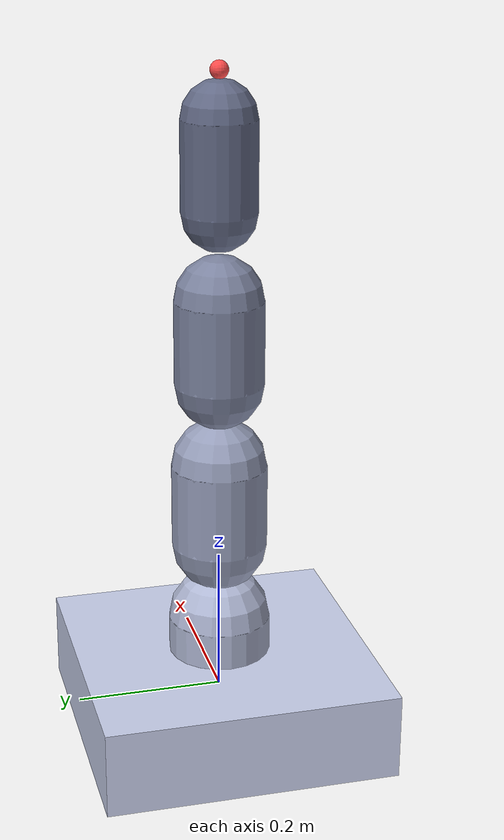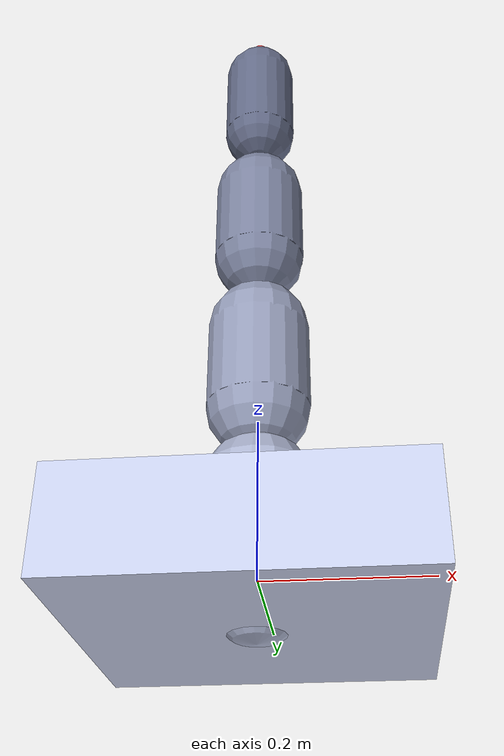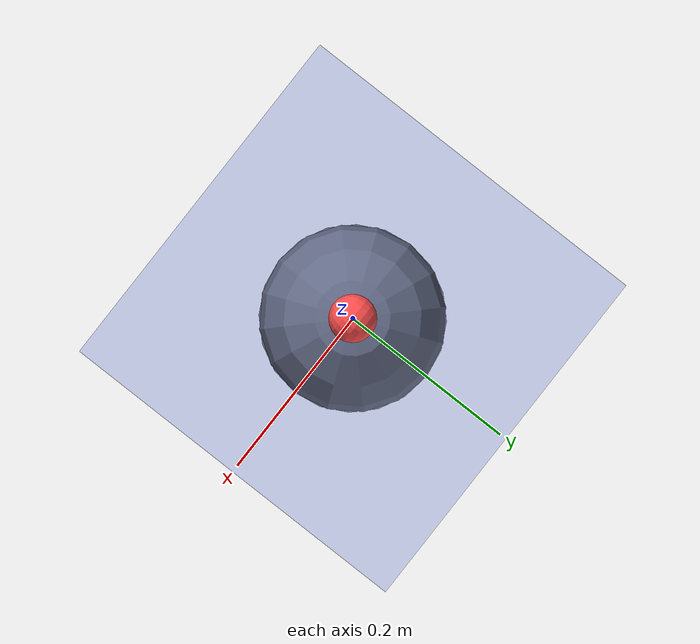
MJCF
<?xml version="1.0" ?>
<!--
  시각: 캡슐 geom. 역학: URDF/pmi_description.urdf 및 read_data.py 와 동일 질량·관성
  (compiler inertiafromgeom=false → geom 은 질량에 사용 안 함).
-->
<mujoco model="pmi_arm_primitive_actuated">
  <compiler angle="radian" autolimits="true" inertiafromgeom="false"/>
  <option gravity="0 0 -9.80665" integrator="RK4" timestep="0.001"/>
  <size memory="1M"/>
  <asset>
    <material name="base_mat" rgba="0.79 0.82 0.93 1"/>
    <material name="link1_mat" rgba="0.69 0.72 0.83 1"/>
    <material name="link2_mat" rgba="0.59 0.62 0.73 1"/>
    <material name="link3_mat" rgba="0.49 0.52 0.63 1"/>
    <material name="link4_mat" rgba="0.39 0.42 0.53 1"/>
  </asset>
  <worldbody>
    <body name="base_link" pos="0 0 0">
      <inertial
        pos="-0.00082323 0.09644 -0.0063291"
        mass="2.4727"
        fullinertia="0.011422 0.012445 0.023105 1.6542e-06 1.3919e-06 -5.9743e-05"/>
      <geom name="base_geom" type="box" size="0.2 0.2 0.06" material="base_mat" contype="0" conaffinity="0"/>
      <body name="link1" pos="0 0 0" euler="3.1416 0 0">
        <inertial
          pos="0.0026336 -1.68446e-05 -0.111117"
          mass="10.0123496865811"
          fullinertia="0.0829601614566715 0.0391199810914461 0.0649458588226152 -0.000328089653994623 -0.000119428008908532 2.09012210735718e-06"/>
        <joint name="jnt1" type="hinge" axis="0 0 1" damping="0"/>
        <geom name="link1_geom" type="capsule" fromto="0 0 0 0 0 -0.11" size="0.07" material="link1_mat" contype="0" conaffinity="0"/>
        <body name="link2" pos="0 0 -0.22" euler="1.5708 0 0">
          <inertial
            pos="6.90559e-05 -0.0851548 -0.00686211"
            mass="10.4391437674567"
            fullinertia="0.0780970193464117 0.0255871855807303 0.0745746466344453 3.53131298101708e-05 -8.81620777833472e-06 0.00547282289489732"/>
          <joint name="jnt2" type="hinge" axis="0 0 1" damping="0"/>
          <geom name="link2_geom" type="capsule" fromto="0 0 0 0 -0.115 0" size="0.065" material="link2_mat" contype="0" conaffinity="0"/>
          <body name="link3" pos="0 -0.23 0" euler="0 0 -1.5708">
            <inertial
              pos="0.0969069 -3.20036e-05 -0.00548574"
              mass="10.3406497234359"
              fullinertia="0.0792872354716476 0.0227404242493157 0.0781409250910383 8.26042768438978e-06 5.43833216931251e-06 0.00431986606376804"/>
            <joint name="jnt3" type="hinge" axis="0 0 1" damping="0"/>
            <geom name="link3_geom" type="capsule" fromto="0 0 0 0.115 0 0" size="0.06" material="link3_mat" contype="0" conaffinity="0"/>
            <body name="link4" pos="0.23 0 0" euler="-3.1416 0 0">
              <inertial
                pos="0.0675884 0.00443192 0.000679202"
                mass="7.01416597186014"
                fullinertia="0.0393493190184971 0.0111764686166838 0.0410218257620852 -9.26169916890393e-04 -8.43406506016272e-06 2.04330936352529e-04"/>
              <joint name="jnt4" type="hinge" axis="0 0 1" damping="0"/>
              <geom name="link4_geom" type="capsule" fromto="0 0 0 0.12 0 0" size="0.05" material="link4_mat" contype="0" conaffinity="0"/>
              <site name="ee" pos="0.18 0 0" size="0.012" rgba="1 0.3 0.3 1"/>
            </body>
          </body>
        </body>
      </body>
    </body>
  </worldbody>
  <actuator>
    <motor name="tau1" joint="jnt1" gear="1" ctrllimited="false"/>
    <motor name="tau2" joint="jnt2" gear="1" ctrllimited="false"/>
    <motor name="tau3" joint="jnt3" gear="1" ctrllimited="false"/>
    <motor name="tau4" joint="jnt4" gear="1" ctrllimited="false"/>
  </actuator>
</mujoco>
